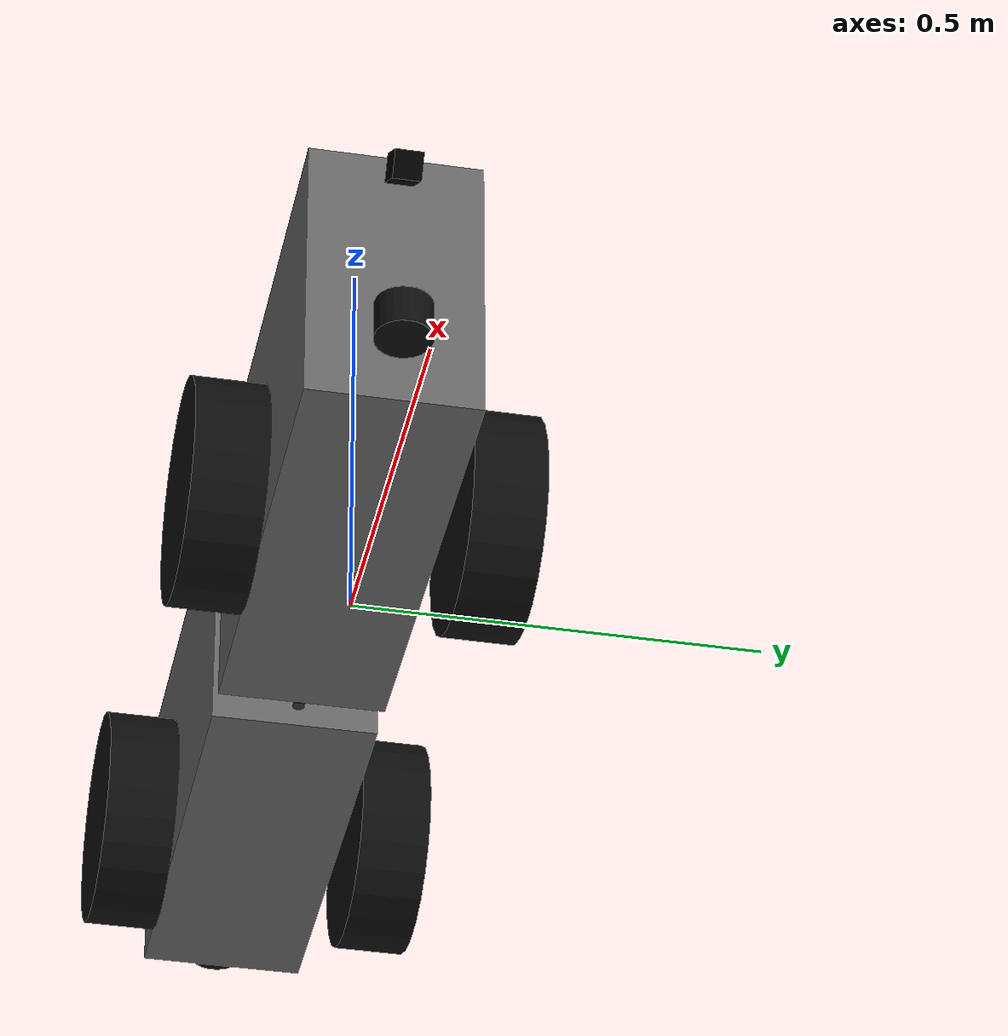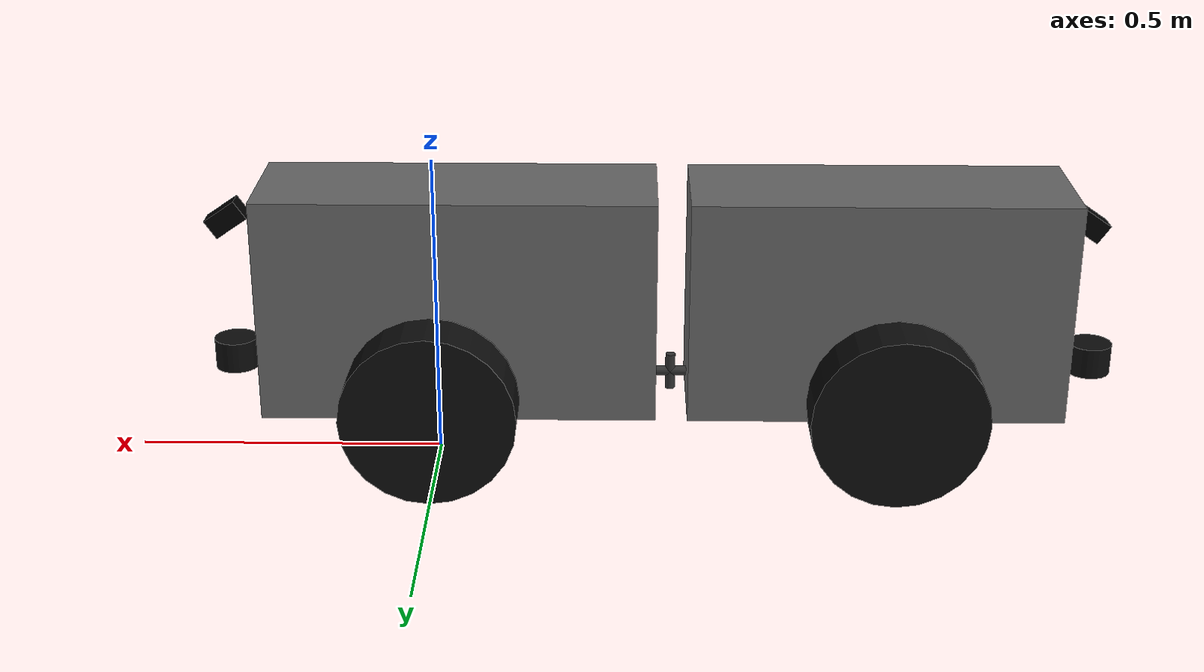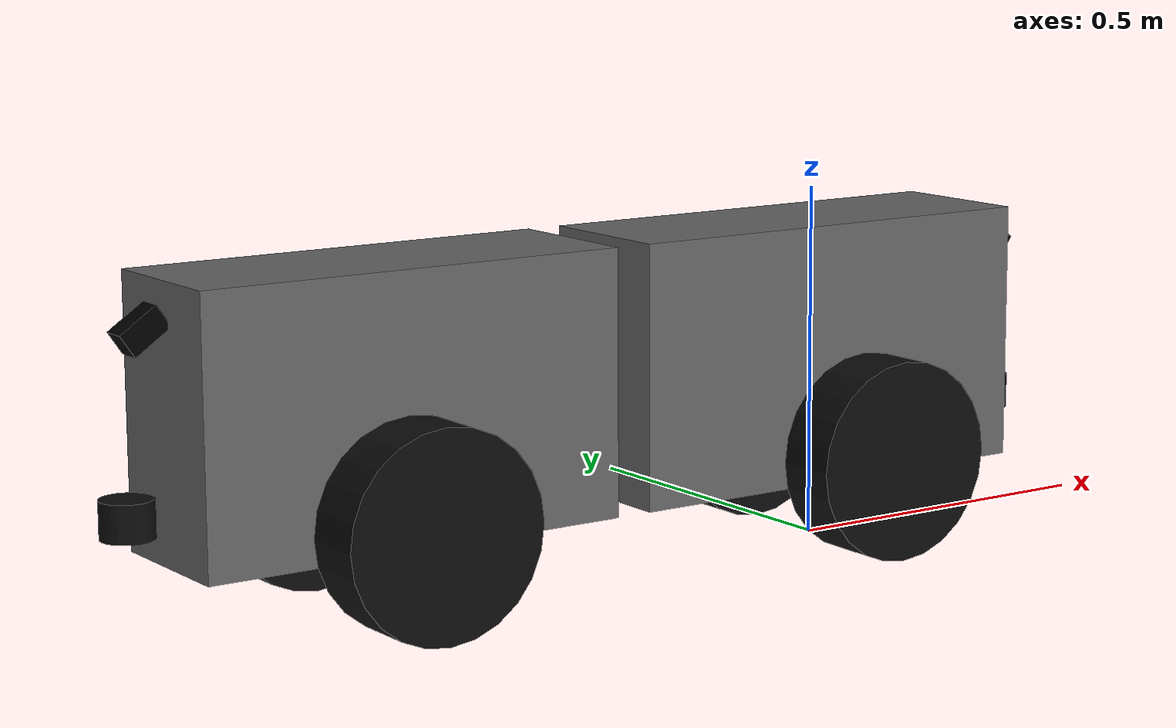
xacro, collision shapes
<?xml version="1.0" encoding="UTF-8"?>
<robot xmlns:xacro="http://www.ros.org/wiki/xacro" name="Floribot">

  <xacro:property name="height_wagon" value="0.363" />
  <xacro:property name="width_wagon" value="0.213" />
  <xacro:property name="length_wagon_front" value="0.635" />
  <xacro:property name="length_wagon_rear" value="0.605" />

  <xacro:property name="ghost_size" value="0.01" />
  <xacro:property name="base_2_front_wagon" value="0.04" />
  <xacro:property name="axesRear_2_rear_wagon" value="0.025" />

  <xacro:property name="wheel_radius" value="0.140" />
  <xacro:property name="wheel_thickness" value="0.09" />
  <xacro:property name="x_joint_wheel_front" value="0" />
  <xacro:property name="y_joint_wheel_front" value="0.167" />
  <xacro:property name="x_joint_wheel_back" value="0" />
  <xacro:property name="y_joint_wheel_back" value="0.167" />

  <xacro:property name="radius" value="0.008" />
  <xacro:property name="vertical_length" value="0.06" />
  <xacro:property name="horizontal_length" value="0.055" />
  <xacro:property name="wheel_joint_2_mid_joint" value="0.383" />

  <xacro:property name="sensor_z" value="0.03" />
  <xacro:property name="front_sensor_x" value="0.3315" />
  <xacro:property name="rear_sensor_x" value="-0.3315" />
  <xacro:property name="camera_z" value="0.263" />
  <xacro:property name="camera_angle" value="0.6" />

  <link name="base_footprint"/>

  <joint name="base_footprint_joint" type="fixed">
    <parent link="base_footprint"/>
    <child link="base_link"/>
    <origin xyz="0 0 ${wheel_radius}" rpy="0 0 0"/>
  </joint>

  <link name="base_link">
    <visual>
      <origin xyz="0 0 ${ghost_size}" rpy="0 0 0"/>
      <geometry>
        <box size="${ghost_size} ${ghost_size} ${ghost_size}"/>
      </geometry>
      <material name="base_mat">
        <color rgba="0.0 0.8 0.8 1.0"/>
      </material>
    </visual>
  </link>

  <link name="axesFront"/>
  <joint name="base_link_2_axesFront" type="fixed">
    <parent link="base_link"/>
    <child link="axesFront"/>
    <origin xyz="0 0 0"/>
  </joint>

  <joint name="j_base_2_front_wagon" type="fixed">
    <parent link="base_link"/>
    <child link="front_wagon"/>
    <origin xyz="${-base_2_front_wagon} 0 0"/>
  </joint>

  <link name="front_wagon">
    <visual>
      <origin xyz="-${length_wagon_front/2+0.0255} 0 -${wheel_radius}" rpy="0 0 0"/>
      <geometry>
        <mesh filename="file:///ws/src/floribot_gz_description/meshes/Vorderwagen.stl" scale="0.001 0.001 0.001"/>
      </geometry>
      <material name="front_wagon_mat">
        <color rgba="0.4 0.4 0.4 1.0"/>
      </material>
    </visual>
    <collision>
      <origin xyz="0 0 ${wheel_radius}" rpy="0 0 0"/>
      <geometry>
        <box size="${length_wagon_front} ${width_wagon} ${height_wagon}"/>
      </geometry>
    </collision>
    <inertial>
      <origin xyz="0 0 ${wheel_radius}" rpy="0 0 0"/>
      <mass value="31"/>
      <inertia ixx="0.3853" ixy="0.0001197" ixz="-0.0128" iyy="1.0" iyz="0.0000149" izz="0.8678"/>
    </inertial>
  </link>

  <link name="jointFront">
    <visual>
      <geometry>
        <cylinder length="${vertical_length}" radius="${radius}"/>
      </geometry>
      <material name="joint_mat">
        <color rgba="0.2 0.2 0.2 1.0"/>
      </material>
    </visual>
    <collision>
      <geometry>
        <cylinder length="${vertical_length}" radius="${radius}"/>
      </geometry>
    </collision>
    <inertial>
      <mass value="0.01"/>
      <inertia ixx="0.000004" ixy="0.0" ixz="0.0" iyy="0.000004" iyz="0.0" izz="0.000004"/>
    </inertial>
  </link>

  <joint name="body_angle_roll" type="revolute">
    <axis xyz="1 0 0"/>
    <limit effort="1.0" lower="-1.57" upper="1.57" velocity="0.5"/>
    <parent link="axesFront"/>
    <child link="jointFront"/>
    <origin xyz="${-wheel_joint_2_mid_joint} 0 0"/>
  </joint>

  <link name="jointRear">
    <visual>
      <origin xyz="0 0 0" rpy="0 1.57 0"/>
      <geometry>
        <cylinder length="${horizontal_length}" radius="${radius}"/>
      </geometry>
      <material name="joint_rear_mat">
        <color rgba="0.2 0.2 0.2 1.0"/>
      </material>
    </visual>
    <collision>
      <origin xyz="0 0 0" rpy="0 1.57 0"/>
      <geometry>
        <cylinder length="${horizontal_length}" radius="${radius}"/>
      </geometry>
    </collision>
    <inertial>
      <mass value="0.01"/>
      <inertia ixx="0.000004" ixy="0.0" ixz="0.0" iyy="0.000004" iyz="0.0" izz="0.000004"/>
    </inertial>
  </link>

  <joint name="body_angle" type="revolute">
    <axis xyz="0 0 1"/>
    <limit effort="1.0" lower="-1.57" upper="1.57" velocity="0.5"/>
    <parent link="jointFront"/>
    <child link="jointRear"/>
    <origin xyz="0 0 0"/>
  </joint>

  <link name="axesRear">
    <visual>
      <origin xyz="0 0 ${wheel_radius}" rpy="0 0 0"/>
      <geometry>
        <box size="${ghost_size} ${ghost_size} ${ghost_size}"/>
      </geometry>
      <material name="rear_axis_mat">
        <color rgba="0 0 0.8 1.0"/>
      </material>
    </visual>
    <collision>
      <origin xyz="0 0 ${wheel_radius}" rpy="0 0 0"/>
      <geometry>
        <box size="${ghost_size} ${ghost_size} ${ghost_size}"/>
      </geometry>
    </collision>
    <inertial>
      <origin xyz="0 0 ${wheel_radius}" rpy="0 0 0"/>
      <mass value="0.001"/>
      <inertia ixx="1.369982" ixy="0.0" ixz="0.0" iyy="0.487502" iyz="0.0" izz="1.132200"/>
    </inertial>
  </link>

  <joint name="j_jointRear_rear_wagon" type="fixed">
    <parent link="jointRear"/>
    <child link="axesRear"/>
    <origin xyz="${-wheel_joint_2_mid_joint + vertical_length/2} 0 0"/>
  </joint>

  <joint name="j_axesRear_2_rear_wagon" type="fixed">
    <parent link="axesRear"/>
    <child link="rear_wagon"/>
    <origin xyz="${axesRear_2_rear_wagon} 0 0"/>
  </joint>

  <link name="rear_wagon">
    <visual>
      <origin xyz="${length_wagon_rear/2+0.056} 0 -${wheel_radius}" rpy="0 0 0"/>
      <geometry>
        <mesh filename="file:///ws/src/floribot_gz_description/meshes/Hinterwagen.stl" scale="0.001 0.001 0.001"/>
      </geometry>
      <material name="rear_wagon_mat">
        <color rgba="0.4 0.4 0.4 1.0"/>
      </material>
    </visual>
    <collision>
      <origin xyz="0 0 ${wheel_radius}" rpy="0 0 0"/>
      <geometry>
        <box size="${length_wagon_rear} ${width_wagon} ${height_wagon}"/>
      </geometry>
    </collision>
    <inertial>
      <origin xyz="0 0 ${wheel_radius}" rpy="0 0 0"/>
      <mass value="33"/>
      <inertia ixx="0.4137" ixy="0.00027" ixz="0.007359" iyy="1.047" iyz="0.0001775" izz="0.9021"/>
    </inertial>
  </link>

  <link name="frontLeft">
    <visual>
      <origin xyz="0 -${wheel_thickness/2-0.0095} 0" rpy="1.57 0 0"/>
      <geometry>
        <mesh filename="file:///ws/src/floribot_gz_description/meshes/Reifen.stl" scale="0.001 0.001 0.001"/>
      </geometry>
      <material name="wheel_mat">
        <color rgba="0.05 0.05 0.05 1.0"/>
      </material>
    </visual>
    <collision>
      <origin xyz="0 0 0" rpy="1.57 0 0"/>
      <geometry>
        <cylinder length="${wheel_thickness}" radius="${wheel_radius}"/>
      </geometry>
    </collision>
    <inertial>
      <mass value="2.4"/>
      <inertia ixx="0.014" ixy="0.0" ixz="0.0" iyy="0.026" iyz="0.0" izz="0.014"/>
    </inertial>
  </link>

  <joint name="joint_frontLeft" type="continuous">
    <parent link="axesFront"/>
    <child link="frontLeft"/>
    <axis xyz="0 1 0"/>
    <origin xyz="${x_joint_wheel_front} ${y_joint_wheel_front} 0"/>
  </joint>

  <link name="frontRight">
    <visual>
      <origin xyz="0 ${wheel_thickness/2-0.0095} 0" rpy="1.57 0 0"/>
      <geometry>
        <mesh filename="file:///ws/src/floribot_gz_description/meshes/Reifen.stl" scale="0.001 0.001 0.001"/>
      </geometry>
      <material name="wheel_mat">
        <color rgba="0.05 0.05 0.05 1.0"/>
      </material>
    </visual>
    <collision>
      <origin xyz="0 0 0" rpy="1.57 0 0"/>
      <geometry>
        <cylinder length="${wheel_thickness}" radius="${wheel_radius}"/>
      </geometry>
    </collision>
    <inertial>
      <mass value="2.4"/>
      <inertia ixx="0.014" ixy="0.0" ixz="0.0" iyy="0.026" iyz="0.0" izz="0.014"/>
    </inertial>
  </link>

  <joint name="joint_frontRight" type="continuous">
    <parent link="axesFront"/>
    <child link="frontRight"/>
    <axis xyz="0 1 0"/>
    <origin xyz="${x_joint_wheel_front} -${y_joint_wheel_front} 0"/>
  </joint>

  <link name="rearLeft">
    <visual>
      <origin xyz="0 -${wheel_thickness/2-0.0095} 0" rpy="1.57 0 0"/>
      <geometry>
        <mesh filename="file:///ws/src/floribot_gz_description/meshes/Reifen.stl" scale="0.001 0.001 0.001"/>
      </geometry>
      <material name="wheel_mat">
        <color rgba="0.05 0.05 0.05 1.0"/>
      </material>
    </visual>
    <collision>
      <origin xyz="0 0 0" rpy="1.57 0 0"/>
      <geometry>
        <cylinder length="${wheel_thickness}" radius="${wheel_radius}"/>
      </geometry>
    </collision>
    <inertial>
      <mass value="2.4"/>
      <inertia ixx="0.014" ixy="0.0" ixz="0.0" iyy="0.026" iyz="0.0" izz="0.014"/>
    </inertial>
  </link>

  <joint name="joint_rearLeft" type="continuous">
    <parent link="axesRear"/>
    <child link="rearLeft"/>
    <axis xyz="0 1 0"/>
    <origin xyz="${x_joint_wheel_back} ${y_joint_wheel_back} 0"/>
  </joint>

  <link name="rearRight">
    <visual>
      <origin xyz="0 ${wheel_thickness/2-0.0095} 0" rpy="1.57 0 0"/>
      <geometry>
        <mesh filename="file:///ws/src/floribot_gz_description/meshes/Reifen.stl" scale="0.001 0.001 0.001"/>
      </geometry>
      <material name="wheel_mat">
        <color rgba="0.05 0.05 0.05 1.0"/>
      </material>
    </visual>
    <collision>
      <origin xyz="0 0 0" rpy="1.57 0 0"/>
      <geometry>
        <cylinder length="${wheel_thickness}" radius="${wheel_radius}"/>
      </geometry>
    </collision>
    <inertial>
      <mass value="2.4"/>
      <inertia ixx="0.014" ixy="0.0" ixz="0.0" iyy="0.026" iyz="0.0" izz="0.014"/>
    </inertial>
  </link>

  <joint name="joint_rearRight" type="continuous">
    <parent link="axesRear"/>
    <child link="rearRight"/>
    <axis xyz="0 1 0"/>
    <origin xyz="${x_joint_wheel_back} -${y_joint_wheel_back} 0"/>
  </joint>

  <gazebo>
    <plugin filename="gz-sim-sensors-system" name="gz::sim::systems::Sensors">
      <render_engine>ogre2</render_engine>
    </plugin>
  </gazebo>

  <link name="front_laser_link">
    <visual>
      <origin xyz="0 0 0" rpy="0 0 0"/>
      <geometry>
        <cylinder length="0.05" radius="0.035"/>
      </geometry>
      <material name="front_laser_mat">
        <color rgba="0.05 0.05 0.05 1.0"/>
      </material>
    </visual>
    <collision>
      <origin xyz="0 0 0" rpy="0 0 0"/>
      <geometry>
        <cylinder length="0.05" radius="0.035"/>
      </geometry>
    </collision>
    <inertial>
      <mass value="0.2"/>
      <inertia ixx="0.0001" ixy="0.0" ixz="0.0" iyy="0.0001" iyz="0.0" izz="0.0001"/>
    </inertial>
  </link>

  <joint name="front_laser_joint" type="fixed">
    <parent link="axesFront"/>
    <child link="front_laser_link"/>
    <origin xyz="${front_sensor_x} 0 ${sensor_z}" rpy="${pi} 0 0"/>
  </joint>

  <gazebo reference="front_laser_link">
    <sensor name="front_laser" type="gpu_lidar">
      <pose>0 0 0 0 0 0</pose>
      <topic>/sensors/scan_front</topic>
      <gz_frame_id>front_laser_link</gz_frame_id>
      <update_rate>10</update_rate>
      <always_on>true</always_on>
      <visualize>true</visualize>
      <lidar>
        <scan>
          <horizontal>
            <samples>720</samples>
            <resolution>1</resolution>
            <min_angle>-1.5708</min_angle>
            <max_angle>1.5708</max_angle>
          </horizontal>
        </scan>
        <range>
          <min>0.10</min>
          <max>30.0</max>
          <resolution>0.01</resolution>
        </range>
        <noise>
          <type>gaussian</type>
          <mean>0.0</mean>
          <stddev>0.01</stddev>
        </noise>
      </lidar>
    </sensor>
  </gazebo>

  <link name="rear_laser_link">
    <visual>
      <origin xyz="0 0 0" rpy="0 0 0"/>
      <geometry>
        <cylinder length="0.05" radius="0.035"/>
      </geometry>
      <material name="rear_laser_mat">
        <color rgba="0.05 0.05 0.05 1.0"/>
      </material>
    </visual>
    <collision>
      <origin xyz="0 0 0" rpy="0 0 0"/>
      <geometry>
        <cylinder length="0.05" radius="0.035"/>
      </geometry>
    </collision>
    <inertial>
      <mass value="0.2"/>
      <inertia ixx="0.0001" ixy="0.0" ixz="0.0" iyy="0.0001" iyz="0.0" izz="0.0001"/>
    </inertial>
  </link>

  <joint name="rear_laser_joint" type="fixed">
    <parent link="axesRear"/>
    <child link="rear_laser_link"/>
    <origin xyz="${rear_sensor_x} 0 ${sensor_z}" rpy="${pi} 0 ${pi}"/>
  </joint>

  <gazebo reference="rear_laser_link">
    <sensor name="rear_laser" type="gpu_lidar">
      <pose>0 0 0 0 0 0</pose>
      <topic>/sensors/scan_rear</topic>
      <gz_frame_id>rear_laser_link</gz_frame_id>
      <update_rate>10</update_rate>
      <always_on>true</always_on>
      <visualize>true</visualize>
      <lidar>
        <scan>
          <horizontal>
            <samples>720</samples>
            <resolution>1</resolution>
            <min_angle>-1.5708</min_angle>
            <max_angle>1.5708</max_angle>
          </horizontal>
        </scan>
        <range>
          <min>0.10</min>
          <max>30.0</max>
          <resolution>0.01</resolution>
        </range>
        <noise>
          <type>gaussian</type>
          <mean>0.0</mean>
          <stddev>0.01</stddev>
        </noise>
      </lidar>
    </sensor>
  </gazebo>

  <link name="front_camera_link">
    <visual>
      <origin xyz="0 0 0" rpy="0 0 0"/>
      <geometry>
        <box size="0.06 0.035 0.035"/>
      </geometry>
      <material name="front_camera_mat">
        <color rgba="0.0 0.0 0.0 1.0"/>
      </material>
    </visual>
    <collision>
      <origin xyz="0 0 0" rpy="0 0 0"/>
      <geometry>
        <box size="0.06 0.035 0.035"/>
      </geometry>
    </collision>
    <inertial>
      <mass value="0.1"/>
      <inertia ixx="0.00005" ixy="0.0" ixz="0.0" iyy="0.00005" iyz="0.0" izz="0.00005"/>
    </inertial>
  </link>

  <joint name="front_camera_joint" type="fixed">
    <parent link="base_link"/>
    <child link="front_camera_link"/>
    <origin xyz="${front_sensor_x} 0 ${camera_z}" rpy="0 ${camera_angle} 0"/>
  </joint>

  <gazebo reference="front_camera_link">
    <sensor name="front_camera" type="camera">
      <pose>0 0 0 0 0 0</pose>
      <topic>/sensors/realsense_front/color/image_raw</topic>
      <gz_frame_id>front_camera_link</gz_frame_id>
      <update_rate>30</update_rate>
      <always_on>true</always_on>
      <visualize>true</visualize>
      <camera>
        <horizontal_fov>1.3962634</horizontal_fov>
        <image>
          <width>640</width>
          <height>480</height>
          <format>R8G8B8</format>
        </image>
        <clip>
          <near>0.05</near>
          <far>50.0</far>
        </clip>
        <noise>
          <type>gaussian</type>
          <mean>0.0</mean>
          <stddev>0.007</stddev>
        </noise>
      </camera>
    </sensor>
  </gazebo>

  <link name="rear_camera_link">
    <visual>
      <origin xyz="0 0 0" rpy="0 0 0"/>
      <geometry>
        <box size="0.06 0.035 0.035"/>
      </geometry>
      <material name="rear_camera_mat">
        <color rgba="0.0 0.0 0.0 1.0"/>
      </material>
    </visual>
    <collision>
      <origin xyz="0 0 0" rpy="0 0 0"/>
      <geometry>
        <box size="0.06 0.035 0.035"/>
      </geometry>
    </collision>
    <inertial>
      <mass value="0.1"/>
      <inertia ixx="0.00005" ixy="0.0" ixz="0.0" iyy="0.00005" iyz="0.0" izz="0.00005"/>
    </inertial>
  </link>

  <joint name="rear_camera_joint" type="fixed">
    <parent link="rear_wagon"/>
    <child link="rear_camera_link"/>
    <origin xyz="${rear_sensor_x} 0 ${camera_z}" rpy="0 ${camera_angle} ${pi}"/>
  </joint>

  <gazebo reference="rear_camera_link">
    <sensor name="rear_camera" type="camera">
      <pose>0 0 0 0 0 0</pose>
      <topic>/sensors/realsense_rear/color/image_raw</topic>
      <gz_frame_id>rear_camera_link</gz_frame_id>
      <update_rate>30</update_rate>
      <always_on>true</always_on>
      <visualize>true</visualize>
      <camera>
        <horizontal_fov>1.3962634</horizontal_fov>
        <image>
          <width>640</width>
          <height>480</height>
          <format>R8G8B8</format>
        </image>
        <clip>
          <near>0.05</near>
          <far>50.0</far>
        </clip>
        <noise>
          <type>gaussian</type>
          <mean>0.0</mean>
          <stddev>0.007</stddev>
        </noise>
      </camera>
    </sensor>
  </gazebo>

  <gazebo>
    <plugin filename="gz-sim-joint-controller-system" name="gz::sim::systems::JointController">
      <joint_name>joint_frontLeft</joint_name>
      <topic>/sim/joint_frontLeft/cmd_vel</topic>
      <use_force_commands>false</use_force_commands>
    </plugin>

    <plugin filename="gz-sim-joint-controller-system" name="gz::sim::systems::JointController">
      <joint_name>joint_frontRight</joint_name>
      <topic>/sim/joint_frontRight/cmd_vel</topic>
      <use_force_commands>false</use_force_commands>
    </plugin>

    <plugin filename="gz-sim-joint-controller-system" name="gz::sim::systems::JointController">
      <joint_name>joint_rearLeft</joint_name>
      <topic>/sim/joint_rearLeft/cmd_vel</topic>
      <use_force_commands>false</use_force_commands>
    </plugin>

    <plugin filename="gz-sim-joint-controller-system" name="gz::sim::systems::JointController">
      <joint_name>joint_rearRight</joint_name>
      <topic>/sim/joint_rearRight/cmd_vel</topic>
      <use_force_commands>false</use_force_commands>
    </plugin>
  </gazebo>

</robot>
